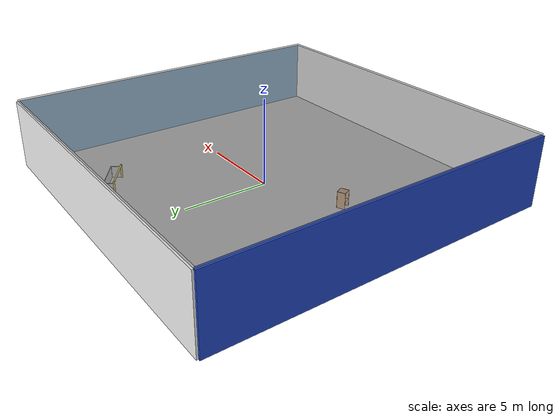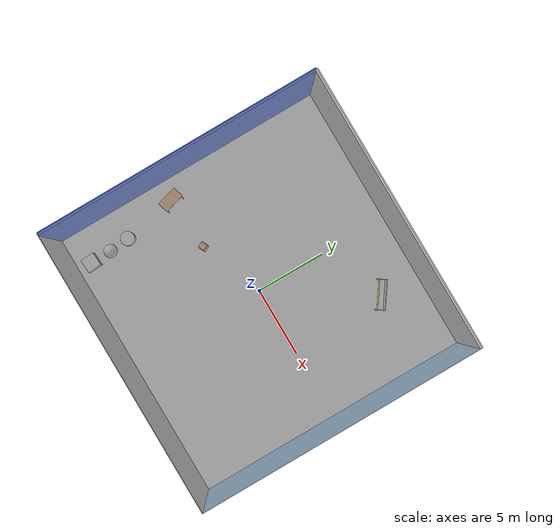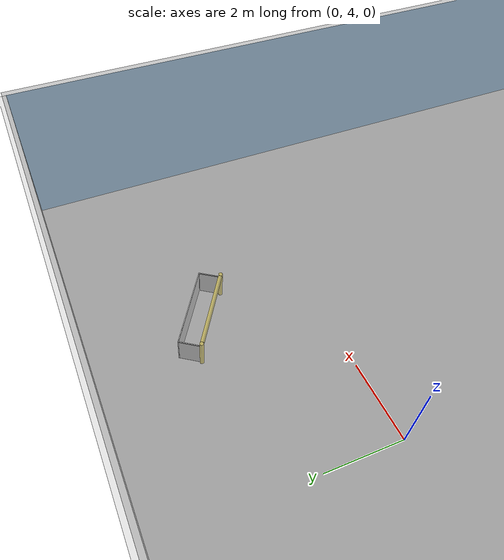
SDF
<sdf version="1.4">
 <world name="default">
  <physics type="ode">
   <max_step_size>0.001</max_step_size>
   <real_time_factor>1</real_time_factor>
   <real_time_update_rate>1000</real_time_update_rate>
   <gravity>0 0 -9.8</gravity>
  </physics>
  <scene><ambient>0.4 0.4 0.4 1</ambient><background>0.7 0.7 0.7 1</background><shadows>1</shadows></scene>
  <model name="Surrounding">
   <static>1</static>
   <link name="Ceiling">
    <collision name="Ceiling_Collision"><geometry><box><size>20 20 0.1</size></box></geometry></collision>
    <visual name="Ceiling_Visual">
     <geometry><box><size>20 20 0.1</size></box></geometry>
     <material>
      <script><uri>file://media/materials/scripts/gazebo.material</uri><name>Gazebo/GreyTransparent</name></script>
     </material>
    </visual>
    <pose>0 0 4.05 0 0 0</pose>
   </link>
   <link name="Wall_South">
    <collision name="Wall_South_Collision">
     <geometry><box><size>20 0 4</size></box></geometry>
     <pose>0 0 2 0 -0 0</pose>
    </collision>
    <visual name="Wall_South_Visual">
     <pose>0 0 2 0 -0 0</pose>
     <geometry><box><size>20 0 4</size></box></geometry>
     <material>
      <script><uri>file://media/materials/scripts/gazebo.material</uri><name>Gazebo/White</name></script>
     </material>
    </visual>
    <velocity_decay><linear>0</linear><angular>0</angular></velocity_decay>
    <pose>0 -10 0 0 -0 0</pose>
   </link>
   <link name="Wall_East">
    <collision name="Wall_21_Collision">
     <geometry><box><size>20 0 4</size></box></geometry>
     <pose>0 0 2 0 -0 0</pose>
    </collision>
    <visual name="Wall_21_Visual">
     <pose>0 0 2 0 -0 0</pose>
     <geometry><box><size>20 0 4</size></box></geometry>
     <material>
      <script><uri>file://media/materials/scripts/gazebo.material</uri><name>Gazebo/SkyBlue</name></script>
     </material>
    </visual>
    <velocity_decay><linear>0</linear><angular>0</angular></velocity_decay>
    <pose>10 0 0 0 -0 1.5708</pose>
   </link>
   <link name="Wall_North">
    <collision name="Wall_22_Collision">
     <geometry><box><size>20 0.2 4</size></box></geometry>
     <pose>0 0 2 0 -0 0</pose>
    </collision>
    <visual name="Wall_22_Visual">
     <pose>0 0 2 0 -0 0</pose>
     <geometry><box><size>20 0.2 4</size></box></geometry>
     <material>
      <script><uri>file://media/materials/scripts/gazebo.material</uri><name>Gazebo/WhiteGlow</name></script>
     </material>
    </visual>
    <velocity_decay><linear>0</linear><angular>0</angular></velocity_decay>
    <pose>0 10 0 0 -0 0</pose>
   </link>
   <link name="Wall_West">
    <collision name="Wall_23_Collision">
     <geometry><box><size>20 0.2 4</size></box></geometry>
     <pose>0 0 2 0 -0 0</pose>
    </collision>
    <visual name="Wall_23_Visual">
     <pose>0 0 2 0 -0 0</pose>
     <geometry><box><size>20 0.2 4</size></box></geometry>
     <material>
      <script><uri>file://media/materials/scripts/gazebo.material</uri><name>Gazebo/Blue</name></script>
     </material>
    </visual>
    <velocity_decay><linear>0</linear><angular>0</angular></velocity_decay>
    <pose>-10 0 0 0 0 -1.5708</pose>
   </link>
   <link name="Ground_link">
    <collision name="collision">
     <pose>0 0 .05 0 -0 0</pose>
     <geometry><box><size>20 20 0.1</size></box></geometry>
    </collision>
    <visual name="visual">
     <pose>0 0 .05 0 -0 0</pose>
     <geometry><box><size>20 20 0.1</size></box></geometry>
     <material>
      <script><uri>file://media/materials/scripts/gazebo.material</uri><name>Gazebo/LightOn</name></script>
     </material>
    </visual>
   </link>
   <static>1</static>
  </model>
  <spherical_coordinates>
   <surface_model>EARTH_WGS84</surface_model>
   <latitude_deg>0</latitude_deg>
   <longitude_deg>0</longitude_deg>
   <elevation>0</elevation>
   <heading_deg>0</heading_deg>
  </spherical_coordinates>
  <light name="lightball_0" type="diffuse">
   <diffuse>0.8 0.8 0.8 1</diffuse>
   <specular>0.2 0.2 0.2 1</specular>
   <attenuation>
    <range>100</range>
    <constant>0.7</constant>
    <linear>0.01</linear>
    <quadratic>0.001</quadratic>
   </attenuation>
   <direction>-0.5 0.1 -0.9</direction>
   <pose>0.187870371072 4.3867677947 1.9321079617 0 0 0</pose>
  </light>
  <light name="lightball_1" type="diffuse">
   <diffuse>0.8 0.8 0.8 1</diffuse>
   <specular>0.2 0.2 0.2 1</specular>
   <attenuation>
    <range>100</range>
    <constant>0.7</constant>
    <linear>0.01</linear>
    <quadratic>0.001</quadratic>
   </attenuation>
   <direction>-0.5 0.1 -0.9</direction>
   <pose>3.65102476972 -7.68986150727 1.70532602057 0 0 0</pose>
  </light>
  <light name="lightball_2" type="diffuse">
   <diffuse>0.8 0.8 0.8 1</diffuse>
   <specular>0.2 0.2 0.2 1</specular>
   <attenuation>
    <range>100</range>
    <constant>0.7</constant>
    <linear>0.01</linear>
    <quadratic>0.001</quadratic>
   </attenuation>
   <direction>-0.5 0.1 -0.9</direction>
   <pose>0.728965510517 -9.82617735835 3.50460526361 0 0 0</pose>
  </light>
  <light name="lightball_3" type="diffuse">
   <diffuse>0.8 0.8 0.8 1</diffuse>
   <specular>0.2 0.2 0.2 1</specular>
   <attenuation>
    <range>100</range>
    <constant>0.7</constant>
    <linear>0.01</linear>
    <quadratic>0.001</quadratic>
   </attenuation>
   <direction>-0.5 0.1 -0.9</direction>
   <pose>-1.35613509873 -3.56825952476 1.57227793894 0 0 0</pose>
  </light>
  <light name="lightball_4" type="diffuse">
   <diffuse>0.8 0.8 0.8 1</diffuse>
   <specular>0.2 0.2 0.2 1</specular>
   <attenuation>
    <range>100</range>
    <constant>0.7</constant>
    <linear>0.01</linear>
    <quadratic>0.001</quadratic>
   </attenuation>
   <direction>-0.5 0.1 -0.9</direction>
   <pose>1.2214900315 -9.58075506224 1.44053218048 0 0 0</pose>
  </light>
  <light name="lightball_5" type="diffuse">
   <diffuse>0.8 0.8 0.8 1</diffuse>
   <specular>0.2 0.2 0.2 1</specular>
   <attenuation>
    <range>100</range>
    <constant>0.7</constant>
    <linear>0.01</linear>
    <quadratic>0.001</quadratic>
   </attenuation>
   <direction>-0.5 0.1 -0.9</direction>
   <pose>4.76725409281 -8.96775284332 3.58636230551 0 0 0</pose>
  </light>
  <light name="lightball_6" type="diffuse">
   <diffuse>0.8 0.8 0.8 1</diffuse>
   <specular>0.2 0.2 0.2 1</specular>
   <attenuation>
    <range>100</range>
    <constant>0.7</constant>
    <linear>0.01</linear>
    <quadratic>0.001</quadratic>
   </attenuation>
   <direction>-0.5 0.1 -0.9</direction>
   <pose>-7.21794095041 -9.49084627178 3.7101398162 0 0 0</pose>
  </light>
  <light name="lightball_7" type="diffuse">
   <diffuse>0.8 0.8 0.8 1</diffuse>
   <specular>0.2 0.2 0.2 1</specular>
   <attenuation>
    <range>100</range>
    <constant>0.7</constant>
    <linear>0.01</linear>
    <quadratic>0.001</quadratic>
   </attenuation>
   <direction>-0.5 0.1 -0.9</direction>
   <pose>0.155506505779 2.10178644314 2.50836580858 0 0 0</pose>
  </light>
  <light name="lightball_8" type="diffuse">
   <diffuse>0.8 0.8 0.8 1</diffuse>
   <specular>0.2 0.2 0.2 1</specular>
   <attenuation>
    <range>100</range>
    <constant>0.7</constant>
    <linear>0.01</linear>
    <quadratic>0.001</quadratic>
   </attenuation>
   <direction>-0.5 0.1 -0.9</direction>
   <pose>-6.57092758461 -0.269263354954 1.64541208666 0 0 0</pose>
  </light>
  <light name="lightball_9" type="diffuse">
   <diffuse>0.8 0.8 0.8 1</diffuse>
   <specular>0.2 0.2 0.2 1</specular>
   <attenuation>
    <range>100</range>
    <constant>0.7</constant>
    <linear>0.01</linear>
    <quadratic>0.001</quadratic>
   </attenuation>
   <direction>-0.5 0.1 -0.9</direction>
   <pose>2.0146289425 -6.77431045219 1.13129195363 0 0 0</pose>
  </light>
  <light name="lightball_10" type="diffuse">
   <diffuse>0.8 0.8 0.8 1</diffuse>
   <specular>0.2 0.2 0.2 1</specular>
   <attenuation>
    <range>100</range>
    <constant>0.7</constant>
    <linear>0.01</linear>
    <quadratic>0.001</quadratic>
   </attenuation>
   <direction>-0.5 0.1 -0.9</direction>
   <pose>-6.00870446692 -1.96607015857 3.25916319656 0 0 0</pose>
  </light>
  <include>
   <uri>model://textured_shapes</uri>
   <pose>-7.62405232079 -7.44711959178 0 0 0 0.0511501797125</pose>
  </include>
  <include><uri>model://table</uri><pose>-8.35424024713 -2.03634347274 0 0 0 1.85511353732</pose></include>
  <include><uri>model://cabinet</uri><pose>-4.56427517973 -1.75684133322 0 0 0 0.421855457948</pose></include>
  <include>
   <uri>model://robocup_3Dsim_goal</uri>
   <pose>4.2826159448 6.79711501061 0 0 0 0.969186188184</pose>
  </include>
 </world>
</sdf>

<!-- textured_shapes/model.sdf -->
<sdf version="1.6">
  <model name="textured_shapes">
    <pose>0 0 0.5 0 0 0</pose>
    <link name="box">
      <pose>0 -1.5 0 0 0 0</pose>
      <collision name="collision">
        <geometry>
          <box>
            <size>1 1 1</size>
          </box>
        </geometry>
      </collision>
      <visual name="visual">
        <geometry>
          <box>
            <size>1 1 1</size>
          </box>
        </geometry>
        <material>
          <script>
            <uri>model://../model_source/models/textured_shapes/materials/scripts</uri>
            <uri>model://../model_source/models/textured_shapes/materials/textures</uri>
            <name>TexturedShape/Squares</name>
          </script>
        </material>
      </visual>
    </link>
    <link name="sphere">
      <collision name="collision">
        <geometry>
          <sphere>
            <radius>0.5</radius>
          </sphere>
        </geometry>
      </collision>
      <visual name="visual">
        <geometry>
          <sphere>
            <radius>0.5</radius>
          </sphere>
        </geometry>
        <material>
          <script>
            <uri>model://../model_source/models/textured_shapes/materials/scripts</uri>
            <uri>model://../model_source/models/textured_shapes/materials/textures</uri>
            <name>TexturedShape/Squares</name>
          </script>
        </material>
      </visual>
    </link>
    <link name="cylinder">
      <pose>0 1.5 0 0 0 0</pose>
      <collision name="collision">
        <geometry>
          <cylinder>
            <radius>0.5</radius>
            <length>1</length>
          </cylinder>
        </geometry>
      </collision>
      <visual name="visual">
        <geometry>
          <cylinder>
            <radius>0.5</radius>
            <length>1</length>
          </cylinder>
        </geometry>
        <material>
          <script>
            <uri>model://../model_source/models/textured_shapes/materials/scripts</uri>
            <uri>model://../model_source/models/textured_shapes/materials/textures</uri>
            <name>TexturedShape/Squares</name>
          </script>
        </material>
      </visual>
    </link>
  </model>
</sdf>

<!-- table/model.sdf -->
<sdf version="1.5">
  <model name="table">
    <static>true</static>
    <link name="link">
      <collision name="surface">
        <pose>0 0 1.0 0 0 0</pose>
        <geometry>
          <box>
            <size>1.5 0.8 0.03</size>
          </box>
        </geometry>
        <surface>
          <friction>
            <ode>
              <mu>0.6</mu>
              <mu2>0.6</mu2>
            </ode>
          </friction>
        </surface>
      </collision>
      <visual name="visual1">
        <pose>0 0 1.0 0 0 0</pose>
        <geometry>
          <box>
            <size>1.5 0.8 0.03</size>
          </box>
        </geometry>
        <material>
          <script>
            <uri>model://media/materials/scripts/gazebo.material</uri>
            <name>Gazebo/Wood</name>
          </script>
        </material>
      </visual>
      <collision name="front_left_leg">
        <pose>0.68 0.38 0.5 0 0 0</pose>
        <geometry>
          <cylinder>
            <radius>0.02</radius>
            <length>1.0</length>
          </cylinder>
        </geometry>
      </collision>
      <visual name="front_left_leg">
        <pose>0.68 0.38 0.5 0 0 0</pose>
        <geometry>
          <cylinder>
            <radius>0.02</radius>
            <length>1.0</length>
          </cylinder>
        </geometry>
        <material>
          <script>
            <uri>model://media/materials/scripts/gazebo.material</uri>
            <name>Gazebo/Grey</name>
          </script>
        </material>
      </visual>
      <collision name="front_right_leg">
        <pose>0.68 -0.38 0.5 0 0 0</pose>
        <geometry>
          <cylinder>
            <radius>0.02</radius>
            <length>1.0</length>
          </cylinder>
        </geometry>
      </collision>
      <visual name="front_right_leg">
        <pose>0.68 -0.38 0.5 0 0 0</pose>
        <geometry>
          <cylinder>
            <radius>0.02</radius>
            <length>1.0</length>
          </cylinder>
        </geometry>
        <material>
          <script>
            <uri>model://media/materials/scripts/gazebo.material</uri>
            <name>Gazebo/Grey</name>
          </script>
        </material>
      </visual>
      <collision name="back_right_leg">
        <pose>-0.68 -0.38 0.5 0 0 0</pose>
        <geometry>
          <cylinder>
            <radius>0.02</radius>
            <length>1.0</length>
          </cylinder>
        </geometry>
      </collision>
      <visual name="back_right_leg">
        <pose>-0.68 -0.38 0.5 0 0 0</pose>
        <geometry>
          <cylinder>
            <radius>0.02</radius>
            <length>1.0</length>
          </cylinder>
        </geometry>
        <material>
          <script>
            <uri>model://media/materials/scripts/gazebo.material</uri>
            <name>Gazebo/Grey</name>
          </script>
        </material>
      </visual>
      <collision name="back_left_leg">
        <pose>-0.68 0.38 0.5 0 0 0</pose>
        <geometry>
          <cylinder>
            <radius>0.02</radius>
            <length>1.0</length>
          </cylinder>
        </geometry>
      </collision>
      <visual name="back_left_leg">
        <pose>-0.68 0.38 0.5 0 0 0</pose>
        <geometry>
          <cylinder>
            <radius>0.02</radius>
            <length>1.0</length>
          </cylinder>
        </geometry>
        <material>
          <script>
            <uri>model://media/materials/scripts/gazebo.material</uri>
            <name>Gazebo/Grey</name>
          </script>
        </material>
      </visual>
    </link>
  </model>
</sdf>

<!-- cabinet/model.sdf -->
<sdf version="1.5">
  <model name="cabinet">
    <static>true</static>
    <link name="cabinet_bottom_plate">
      <inertial>
        <pose>0 0 -1 0 0 0</pose>
        <inertia>
          <ixx>2.050000</ixx>
          <ixy>0</ixy>
          <ixz>0</ixz>
          <iyy>2.050000</iyy>
          <iyz>0</iyz>
          <izz>2.050000</izz>
        </inertia>
        <mass>25.000000</mass>
      </inertial>
      <collision name="cabinet_bottom_plate_geom">
        <pose>0 0 0.010000 0 0 0</pose>
        <geometry>
          <box>
            <size>0.450000 0.450000 0.020000</size>
          </box>
        </geometry>
      </collision>
      <visual name="cabinet_bottom_plate_geom_visual">
        <pose>0 0 0.010000 0 0 0</pose>
        <geometry>
          <box>
            <size>0.450000 0.450000 0.020000</size>
          </box>
        </geometry>
        <material>
          <script>
            <uri>model://media/materials/scripts/gazebo.material</uri>
            <name>Gazebo/Wood</name>
          </script>
        </material>
      </visual>
      <collision name="cabinet_bottom_plate_geom_cabinet_back_plate">
        <pose>0.235000 0 0.510000 0 0 0</pose>
        <geometry>
          <box>
            <size>0.020000 0.450000 1.020000</size>
          </box>
        </geometry>
      </collision>
      <visual name="cabinet_bottom_plate_geom_cabinet_back_plate_visual">
        <pose>0.235000 0 0.510000 0 0 0</pose>
        <geometry>
          <box>
            <size>0.020000 0.450000 1.020000</size>
          </box>
        </geometry>
        <material>
          <script>
            <uri>model://media/materials/scripts/gazebo.material</uri>
            <name>Gazebo/Wood</name>
          </script>
        </material>
      </visual>
      <collision name="cabinet_bottom_plate_geom_cabinet_left_plate">
        <pose>0 0.235000 0.510000 0 0 0</pose>
        <geometry>
          <box>
            <size>0.450000 0.020000 1.020000</size>
          </box>
        </geometry>
      </collision>
      <visual name="cabinet_bottom_plate_geom_cabinet_left_plate_visual">
        <pose>0 0.235000 0.510000 0 0 0</pose>
        <geometry>
          <box>
            <size>0.450000 0.020000 1.020000</size>
          </box>
        </geometry>
        <material>
          <script>
            <uri>model://media/materials/scripts/gazebo.material</uri>
            <name>Gazebo/Wood</name>
          </script>
        </material>
      </visual>
      <collision name="cabinet_bottom_plate_geom_cabinet_middle_plate">
        <pose>0 0 0.510000 0 0 0</pose>
        <geometry>
          <box>
            <size>0.450000 0.450000 0.020000</size>
          </box>
        </geometry>
      </collision>
      <visual name="cabinet_bottom_plate_geom_cabinet_middle_plate_visual">
        <pose>0 0 0.510000 0 0 0</pose>
        <geometry>
          <box>
            <size>0.450000 0.450000 0.020000</size>
          </box>
        </geometry>
        <material>
          <script>
            <uri>model://media/materials/scripts/gazebo.material</uri>
            <name>Gazebo/Wood</name>
          </script>
        </material>
      </visual>
      <collision name="cabinet_bottom_plate_geom_cabinet_right_plate">
        <pose>0 -0.235000 0.510000 0 0 0</pose>
        <geometry>
          <box>
            <size>0.450000 0.020000 1.020000</size>
          </box>
        </geometry>
      </collision>
      <visual name="cabinet_bottom_plate_geom_cabinet_right_plate_visual">
        <pose>0 -0.235000 0.510000 0 0 0</pose>
        <geometry>
          <box>
            <size>0.450000 0.020000 1.020000</size>
          </box>
        </geometry>
        <material>
          <script>
            <uri>model://media/materials/scripts/gazebo.material</uri>
            <name>Gazebo/Wood</name>
          </script>
        </material>
      </visual>
      <collision name="cabinet_bottom_plate_geom_cabinet_top_plate">
        <pose>0 0 1.010000 0 0 0</pose>
        <geometry>
          <box>
            <size>0.450000 0.450000 0.020000</size>
          </box>
        </geometry>
      </collision>
      <visual name="cabinet_bottom_plate_geom_cabinet_top_plate_visual">
        <pose>0 0 1.010000 0 0 0</pose>
        <geometry>
          <box>
            <size>0.450000 0.450000 0.020000</size>
          </box>
        </geometry>
        <material>
          <script>
            <uri>model://media/materials/scripts/gazebo.material</uri>
            <name>Gazebo/Wood</name>
          </script>
        </material>
      </visual>
    </link>
  </model>
</sdf>

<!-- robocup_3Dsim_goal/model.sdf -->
<sdf version="1.5">
  <model name="robocup_3d_goal">
    <static>true</static>
    <link name="left_post">
      <pose>0 1.05 0.45 0 0 0</pose>
      <collision name="collision">
        <geometry>
          <cylinder>
            <radius>0.05</radius>
            <length>0.9</length>
          </cylinder>
        </geometry>
      </collision>
      <visual name="visual">
        <geometry>
          <cylinder>
            <radius>0.05</radius>
            <length>0.9</length>
          </cylinder>
        </geometry>
        <material>
          <script>
            <uri>file://media/materials/scripts/gazebo.material</uri>
            <name>Gazebo/ZincYellow</name>
          </script>
        </material>
      </visual>
    </link>
    <link name="left_support_horiz_lower">
      <pose>0.30 1.05 0.01 0 0 0</pose>
      <collision name="collision">
        <geometry>
          <box>
            <size>0.50 0.02 0.02</size>
          </box>
        </geometry>
      </collision>
      <visual name="visual">
        <geometry>
          <box>
            <size>0.50 0.02 0.02</size>
          </box>
        </geometry>
        <material>
          <script>
            <uri>file://media/materials/scripts/gazebo.material</uri>
            <name>Gazebo/White</name>
          </script>
        </material>
      </visual>
    </link>
    <link name="left_support_horiz_upper">
      <pose>0.30 1.05 0.79 0 0 0</pose>
      <collision name="collision">
        <geometry>
          <box>
            <size>0.50 0.02 0.02</size>
          </box>
        </geometry>
      </collision>
      <visual name="visual">
        <geometry>
          <box>
            <size>0.50 0.02 0.02</size>
          </box>
        </geometry>
        <material>
          <script>
            <uri>file://media/materials/scripts/gazebo.material</uri>
            <name>Gazebo/White</name>
          </script>
        </material>
      </visual>
    </link>
    <link name="left_support_vertical">
      <pose>0.56 1.05 0.4 0 1.5708 0</pose>
      <collision name="collision">
        <geometry>
          <box>
            <size>0.80 0.02 0.02</size>
          </box>
        </geometry>
      </collision>
      <visual name="visual">
        <geometry>
          <box>
            <size>0.80 0.02 0.02</size>
          </box>
        </geometry>
        <material>
          <script>
            <uri>file://media/materials/scripts/gazebo.material</uri>
            <name>Gazebo/White</name>
          </script>
        </material>
      </visual>
    </link>
    <link name="right_support_horiz_lower">
      <pose>0.30 -1.05 0.01 0 0 0</pose>
      <collision name="collision">
        <geometry>
          <box>
            <size>0.50 0.02 0.02</size>
          </box>
        </geometry>
      </collision>
      <visual name="visual">
        <geometry>
          <box>
            <size>0.50 0.02 0.02</size>
          </box>
        </geometry>
        <material>
          <script>
            <uri>file://media/materials/scripts/gazebo.material</uri>
            <name>Gazebo/White</name>
          </script>
        </material>
      </visual>
    </link>
    <link name="right_support_horiz_upper">
      <pose>0.30 -1.05 0.79 0 0 0</pose>
      <collision name="collision">
        <geometry>
          <box>
            <size>0.50 0.02 0.02</size>
          </box>
        </geometry>
      </collision>
      <visual name="visual">
        <geometry>
          <box>
            <size>0.50 0.02 0.02</size>
          </box>
        </geometry>
        <material>
          <script>
            <uri>file://media/materials/scripts/gazebo.material</uri>
            <name>Gazebo/White</name>
          </script>
        </material>
      </visual>
    </link>
    <link name="right_support_vertical">
      <pose>0.56 -1.05 0.4 0 1.5708 0</pose>
      <collision name="collision">
        <geometry>
          <box>
            <size>0.80 0.02 0.02</size>
          </box>
        </geometry>
      </collision>
      <visual name="visual">
        <geometry>
          <box>
            <size>0.80 0.02 0.02</size>
          </box>
        </geometry>
        <material>
          <script>
            <uri>file://media/materials/scripts/gazebo.material</uri>
            <name>Gazebo/White</name>
          </script>
        </material>
      </visual>
    </link>
    <link name="center_support_horiz_lower">
      <pose>0.56 0 0.01 0 1.5708 0</pose>
      <collision name="collision">
        <geometry>
          <box>
            <size>0.02 2.08 0.02</size>
          </box>
        </geometry>
      </collision>
      <visual name="visual">
        <geometry>
          <box>
            <size>0.02 2.08 0.02</size>
          </box>
        </geometry>
        <material>
          <script>
            <uri>file://media/materials/scripts/gazebo.material</uri>
            <name>Gazebo/White</name>
          </script>
        </material>
      </visual>
    </link>
    <link name="center_support_horiz_upper">
      <pose>0.56 0 0.79 0 1.5708 0</pose>
      <collision name="collision">
        <geometry>
          <box>
            <size>0.02 2.08 0.02</size>
          </box>
        </geometry>
      </collision>
      <visual name="visual">
        <geometry>
          <box>
            <size>0.02 2.08 0.02</size>
          </box>
        </geometry>
        <material>
          <script>
            <uri>file://media/materials/scripts/gazebo.material</uri>
            <name>Gazebo/White</name>
          </script>
        </material>
      </visual>
    </link>
    <link name="right_post">
      <pose>0 -1.05 0.45 0 0 0</pose>
      <collision name="collision">
        <geometry>
          <cylinder>
            <radius>0.05</radius>
            <length>0.9</length>
          </cylinder>
        </geometry>
      </collision>
      <visual name="visual">
        <geometry>
          <cylinder>
            <radius>0.05</radius>
            <length>0.9</length>
          </cylinder>
        </geometry>
        <material>
          <script>
            <uri>file://media/materials/scripts/gazebo.material</uri>
            <name>Gazebo/ZincYellow</name>
          </script>
        </material>
      </visual>
    </link>
    <link name="crossbar">
      <pose>0 0 0.85 1.57 1.57 0</pose>
      <collision name="collision">
        <geometry>
          <cylinder>
            <radius>0.05</radius>
            <length>2.0</length>
          </cylinder>
        </geometry>
      </collision>
      <visual name="visual">
        <geometry>
          <cylinder>
            <radius>0.05</radius>
            <length>2.0</length>
          </cylinder>
        </geometry>
        <material>
          <script>
            <uri>file://media/materials/scripts/gazebo.material</uri>
            <name>Gazebo/ZincYellow</name>
          </script>
        </material>
      </visual>
    </link>
    <link name="center_net">
      <pose>0.56 0 0.40 0 0 0</pose>
      <collision name="collision">
        <geometry>
          <box>
            <size>0.01 2.1 0.80</size>
          </box>
        </geometry>
      </collision>
      <visual name="visual">
        <geometry>
          <box>
            <size>0.01 2.1 0.80</size>
          </box>
        </geometry>
        <material>
          <script>
            <uri>model://../model_source/models/robocup09_spl_field/materials/scripts/</uri>
            <uri>model://../model_source/models/robocup09_spl_field/materials/textures/</uri>
            <name>RoboCup/Net</name>
          </script>
        </material>
      </visual>
    </link>
    <link name="left_net">
      <pose>0.30 1.05 0.40 0 0 0</pose>
      <collision name="collision">
        <geometry>
          <box>
            <size>0.50 0.01 0.76</size>
          </box>
        </geometry>
      </collision>
      <visual name="visual">
        <geometry>
          <box>
            <size>0.50 0.01 0.76</size>
          </box>
        </geometry>
        <material>
          <script>
            <uri>model://../model_source/models/robocup09_spl_field/materials/scripts/</uri>
            <uri>model://../model_source/models/robocup09_spl_field/materials/textures/</uri>
            <name>RoboCup/Net</name>
          </script>
        </material>
      </visual>
    </link>
    <link name="right_net">
      <pose>0.30 -1.05 0.40 0 0 0</pose>
      <collision name="collision">
        <geometry>
          <box>
            <size>0.50 0.01 0.76</size>
          </box>
        </geometry>
      </collision>
      <visual name="visual">
        <geometry>
          <box>
            <size>0.50 0.01 0.76</size>
          </box>
        </geometry>
        <material>
          <script>
            <uri>model://../model_source/models/robocup09_spl_field/materials/scripts/</uri>
            <uri>model://../model_source/models/robocup09_spl_field/materials/textures/</uri>
            <name>RoboCup/Net</name>
          </script>
        </material>
      </visual>
    </link>
  </model>
</sdf>
